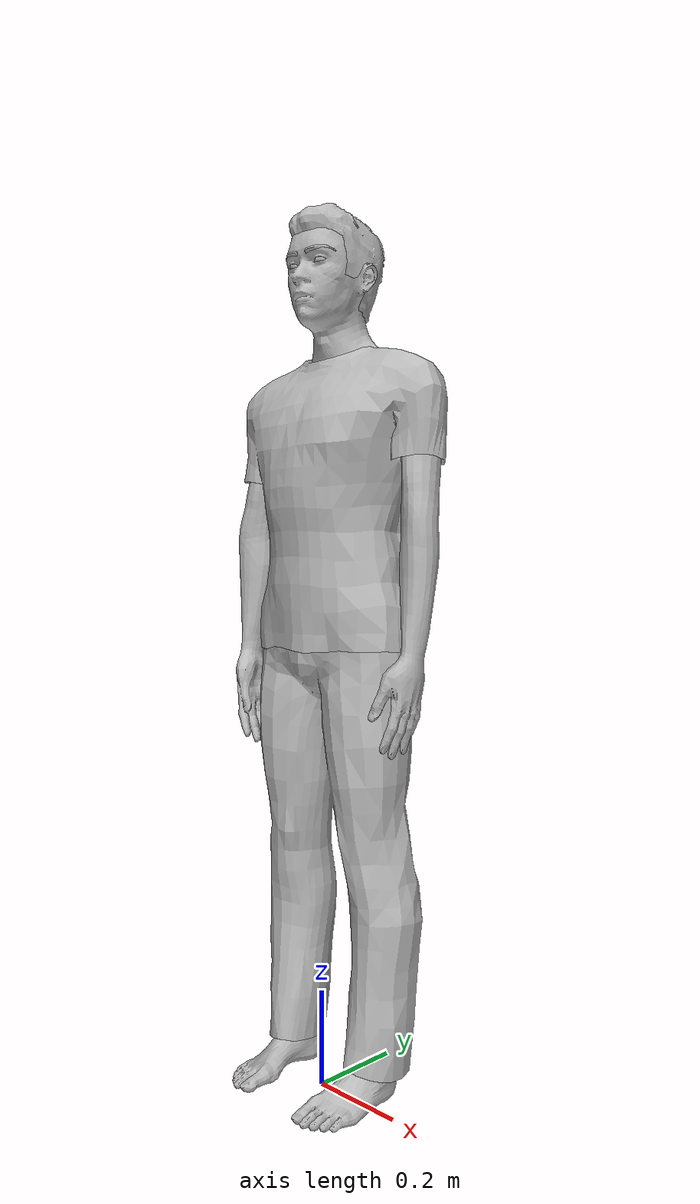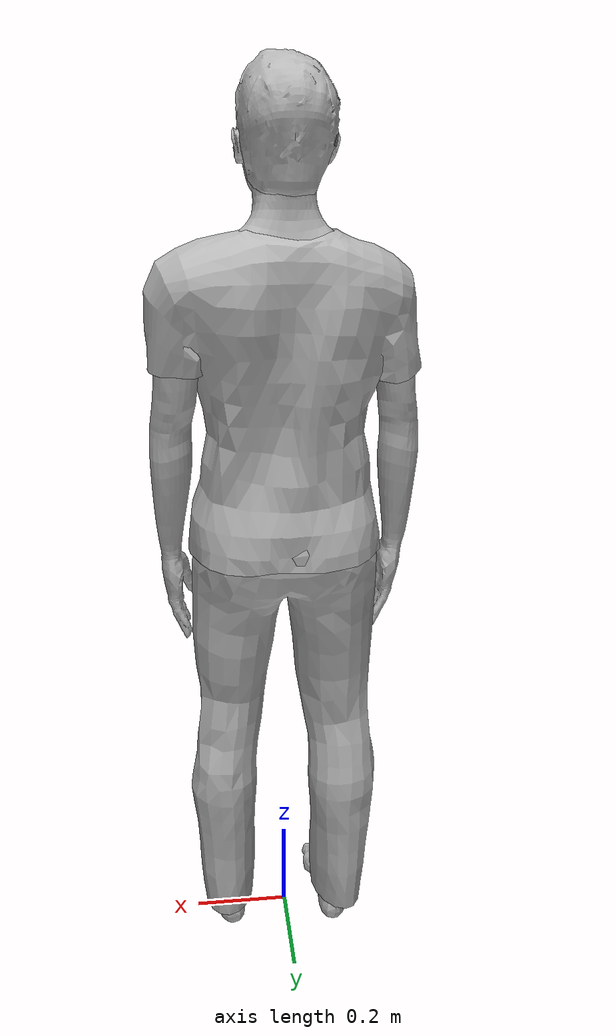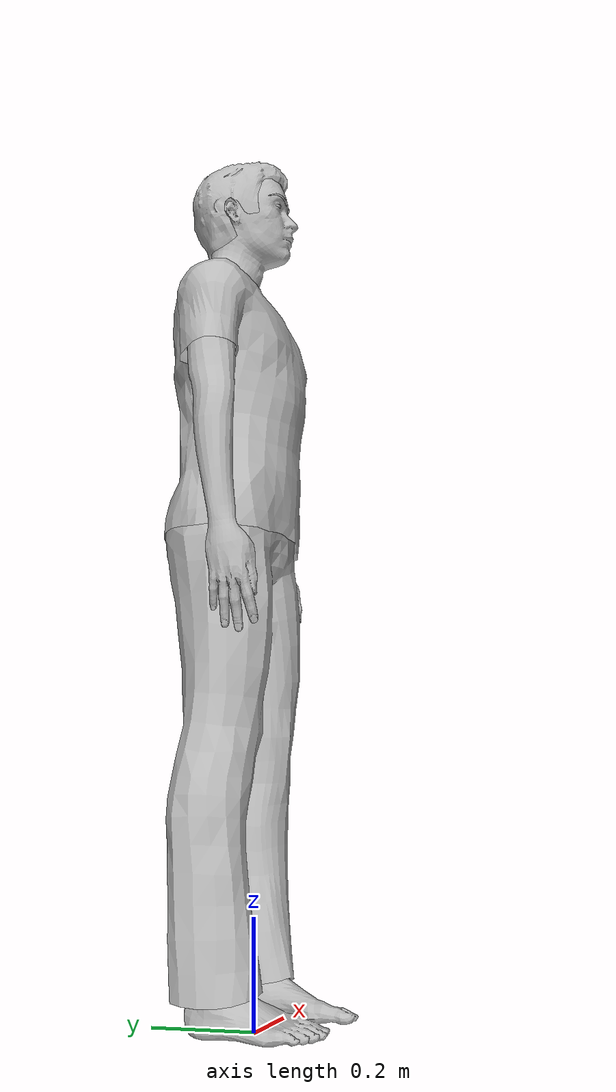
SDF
<?xml version="1.0"?>
<sdf version="1.9">
  <model name="worker_standing">
    <static>true</static>
    <link name="link">
      <collision name="collision"><pose>0 0 0.9 0 0 0</pose><geometry><cylinder><radius>0.30</radius><length>1.8</length></cylinder></geometry></collision>
      <!-- Gazebo Fuel OpenRobotics person (CC0), hi-vis orange clothing (hi_vis_*). -->
      <visual name="mesh_0"><geometry><mesh><uri>meshes/worker_standing_0.obj</uri></mesh></geometry><material><pbr><metal><albedo_map>materials/textures/worker_standing_0.png</albedo_map></metal></pbr></material></visual>
      <visual name="hi_vis_trousers"><geometry><mesh><uri>meshes/worker_standing_1.obj</uri></mesh></geometry><material><pbr><metal><albedo_map>materials/textures/worker_standing_1.png</albedo_map></metal></pbr></material></visual>
      <visual name="hi_vis_top"><geometry><mesh><uri>meshes/worker_standing_2.obj</uri></mesh></geometry><material><pbr><metal><albedo_map>materials/textures/worker_standing_2.png</albedo_map></metal></pbr></material></visual>
      <visual name="mesh_3"><geometry><mesh><uri>meshes/worker_standing_3.obj</uri></mesh></geometry><material><pbr><metal><albedo_map>materials/textures/worker_standing_3.png</albedo_map></metal></pbr></material></visual>
      <visual name="mesh_4"><geometry><mesh><uri>meshes/worker_standing_4.obj</uri></mesh></geometry><material><pbr><metal><albedo_map>materials/textures/worker_standing_4.png</albedo_map></metal></pbr></material></visual>
      <visual name="mesh_5"><geometry><mesh><uri>meshes/worker_standing_5.obj</uri></mesh></geometry><material><pbr><metal><albedo_map>materials/textures/worker_standing_5.png</albedo_map></metal></pbr></material></visual>
      <visual name="mesh_6"><geometry><mesh><uri>meshes/worker_standing_6.obj</uri></mesh></geometry><material><pbr><metal><albedo_map>materials/textures/worker_standing_6.png</albedo_map></metal></pbr></material></visual>
    </link>
  </model>
</sdf>
